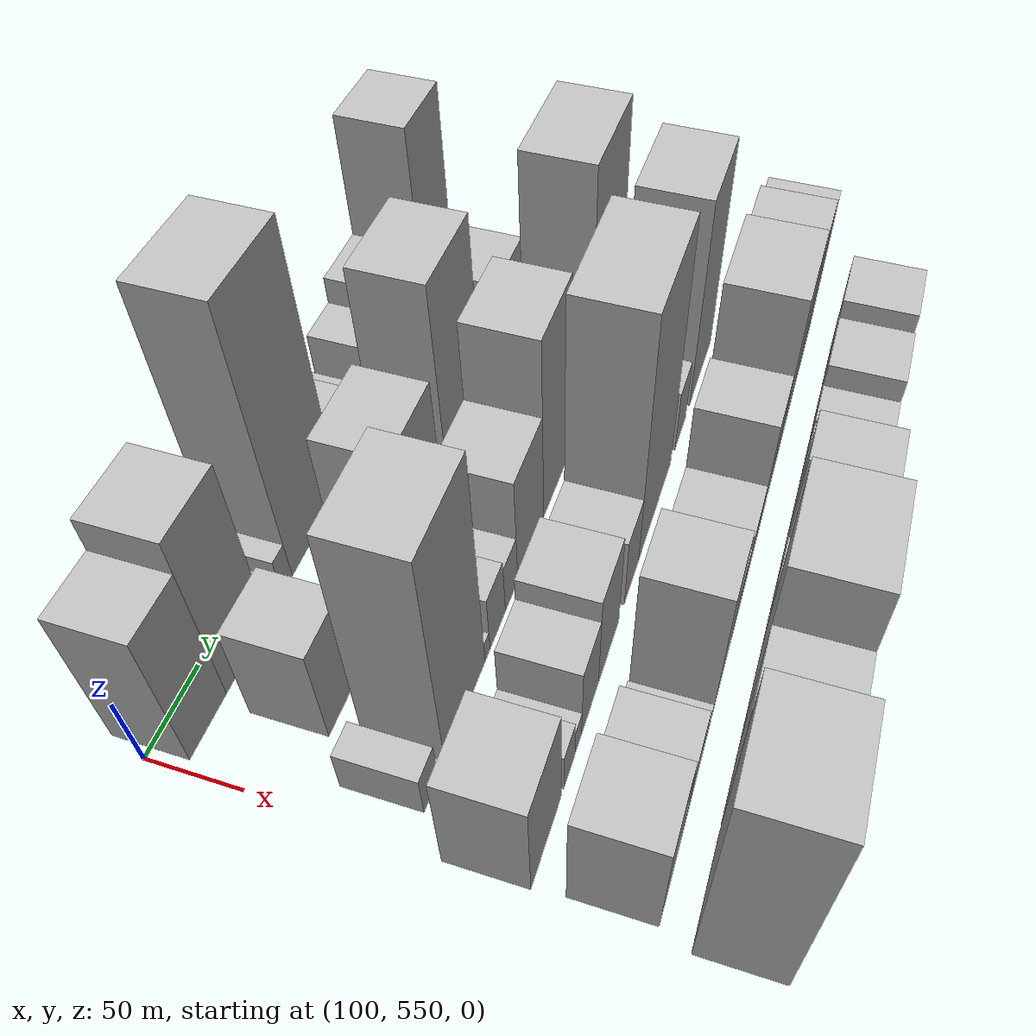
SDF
<sdf version="1.6">
 <world name="default">
  <model name="building_44">
   <static>1</static>
   <pose>100.0000 572.9980 0 0.000000 0.000000 0.000000</pose>
   <link name="link">
    <pose>0 0 49.50 0 0 0</pose>
    <collision name="collision"><geometry><box><size>40.0000 34.7826 99.0000</size></box></geometry></collision>
    <visual name="visual">
     <cast_shadows>0</cast_shadows>
     <geometry><box><size>40.0000 34.7826 99.0000</size></box></geometry>
     <material>
      <script>
       <uri>model://HANNAS_wall/materials/scripts</uri>
       <uri>model://HANNAS_wall/materials/textures</uri>
       <name>vrc/HANNAS_wall</name>
      </script>
     </material>
    </visual>
   </link>
  </model>
  <model name="building_45">
   <static>1</static>
   <pose>100.0000 611.5817 0 0.000000 0.000000 0.000000</pose>
   <link name="link">
    <pose>0 0 60.00 0 0 0</pose>
    <collision name="collision"><geometry><box><size>40.0000 42.3847 120.0000</size></box></geometry></collision>
    <visual name="visual">
     <cast_shadows>0</cast_shadows>
     <geometry><box><size>40.0000 42.3847 120.0000</size></box></geometry>
     <material>
      <script>
       <uri>model://HANNAS_wall/materials/scripts</uri>
       <uri>model://HANNAS_wall/materials/textures</uri>
       <name>vrc/HANNAS_wall</name>
      </script>
     </material>
    </visual>
   </link>
  </model>
  <model name="building_46">
   <static>1</static>
   <pose>100.0000 638.1814 0 0.000000 0.000000 0.000000</pose>
   <link name="link">
    <pose>0 0 12.00 0 0 0</pose>
    <collision name="collision"><geometry><box><size>40.0000 10.8147 24.0000</size></box></geometry></collision>
    <visual name="visual">
     <cast_shadows>0</cast_shadows>
     <geometry><box><size>40.0000 10.8147 24.0000</size></box></geometry>
     <material>
      <script>
       <uri>model://HANNAS_wall/materials/scripts</uri>
       <uri>model://HANNAS_wall/materials/textures</uri>
       <name>vrc/HANNAS_wall</name>
      </script>
     </material>
    </visual>
   </link>
  </model>
  <model name="building_47">
   <static>1</static>
   <pose>100.0000 654.4416 0 0.000000 0.000000 0.000000</pose>
   <link name="link">
    <pose>0 0 13.50 0 0 0</pose>
    <collision name="collision"><geometry><box><size>40.0000 11.7057 27.0000</size></box></geometry></collision>
    <visual name="visual">
     <cast_shadows>0</cast_shadows>
     <geometry><box><size>40.0000 11.7057 27.0000</size></box></geometry>
     <material>
      <script>
       <uri>model://HANNAS_wall/materials/scripts</uri>
       <uri>model://HANNAS_wall/materials/textures</uri>
       <name>vrc/HANNAS_wall</name>
      </script>
     </material>
    </visual>
   </link>
  </model>
  <model name="building_48">
   <static>1</static>
   <pose>100.0000 688.8417 0 0.000000 0.000000 0.000000</pose>
   <link name="link">
    <pose>0 0 93.00 0 0 0</pose>
    <collision name="collision"><geometry><box><size>40.0000 57.0945 186.0000</size></box></geometry></collision>
    <visual name="visual">
     <cast_shadows>0</cast_shadows>
     <geometry><box><size>40.0000 57.0945 186.0000</size></box></geometry>
     <material>
      <script>
       <uri>model://HANNAS_wall/materials/scripts</uri>
       <uri>model://HANNAS_wall/materials/textures</uri>
       <name>vrc/HANNAS_wall</name>
      </script>
     </material>
    </visual>
   </link>
  </model>
  <model name="building_49">
   <static>1</static>
   <pose>100.0000 737.1750 0 0.000000 0.000000 0.000000</pose>
   <link name="link">
    <pose>0 0 24.00 0 0 0</pose>
    <collision name="collision"><geometry><box><size>40.0000 25.5722 48.0000</size></box></geometry></collision>
    <visual name="visual">
     <cast_shadows>0</cast_shadows>
     <geometry><box><size>40.0000 25.5722 48.0000</size></box></geometry>
     <material>
      <script>
       <uri>model://HANNAS_wall/materials/scripts</uri>
       <uri>model://HANNAS_wall/materials/textures</uri>
       <name>vrc/HANNAS_wall</name>
      </script>
     </material>
    </visual>
   </link>
  </model>
  <model name="building_50">
   <static>1</static>
   <pose>100.0000 761.8153 0 0.000000 0.000000 0.000000</pose>
   <link name="link">
    <pose>0 0 15.00 0 0 0</pose>
    <collision name="collision"><geometry><box><size>40.0000 15.7083 30.0000</size></box></geometry></collision>
    <visual name="visual">
     <cast_shadows>0</cast_shadows>
     <geometry><box><size>40.0000 15.7083 30.0000</size></box></geometry>
     <material>
      <script>
       <uri>model://HANNAS_wall/materials/scripts</uri>
       <uri>model://HANNAS_wall/materials/textures</uri>
       <name>vrc/HANNAS_wall</name>
      </script>
     </material>
    </visual>
   </link>
  </model>
  <model name="building_51">
   <static>1</static>
   <pose>100.0000 772.6809 0 0.000000 0.000000 0.000000</pose>
   <link name="link">
    <pose>0 0 7.50 0 0 0</pose>
    <collision name="collision"><geometry><box><size>40.0000 6.0230 15.0000</size></box></geometry></collision>
    <visual name="visual">
     <cast_shadows>0</cast_shadows>
     <geometry><box><size>40.0000 6.0230 15.0000</size></box></geometry>
     <material>
      <script>
       <uri>model://HANNAS_wall/materials/scripts</uri>
       <uri>model://HANNAS_wall/materials/textures</uri>
       <name>vrc/HANNAS_wall</name>
      </script>
     </material>
    </visual>
   </link>
  </model>
  <model name="building_52">
   <static>1</static>
   <pose>100.0000 792.7861 0 0.000000 0.000000 0.000000</pose>
   <link name="link">
    <pose>0 0 24.00 0 0 0</pose>
    <collision name="collision"><geometry><box><size>40.0000 28.1875 48.0000</size></box></geometry></collision>
    <visual name="visual">
     <cast_shadows>0</cast_shadows>
     <geometry><box><size>40.0000 28.1875 48.0000</size></box></geometry>
     <material>
      <script>
       <uri>model://HANNAS_wall/materials/scripts</uri>
       <uri>model://HANNAS_wall/materials/textures</uri>
       <name>vrc/HANNAS_wall</name>
      </script>
     </material>
    </visual>
   </link>
  </model>
  <model name="building_53">
   <static>1</static>
   <pose>100.0000 826.5708 0 0.000000 0.000000 0.000000</pose>
   <link name="link">
    <pose>0 0 33.00 0 0 0</pose>
    <collision name="collision"><geometry><box><size>40.0000 39.3819 66.0000</size></box></geometry></collision>
    <visual name="visual">
     <cast_shadows>0</cast_shadows>
     <geometry><box><size>40.0000 39.3819 66.0000</size></box></geometry>
     <material>
      <script>
       <uri>model://HANNAS_wall/materials/scripts</uri>
       <uri>model://HANNAS_wall/materials/textures</uri>
       <name>vrc/HANNAS_wall</name>
      </script>
     </material>
    </visual>
   </link>
  </model>
  <model name="building_54">
   <static>1</static>
   <pose>100.0000 869.0312 0 0.000000 0.000000 0.000000</pose>
   <link name="link">
    <pose>0 0 72.00 0 0 0</pose>
    <collision name="collision"><geometry><box><size>40.0000 45.5390 144.0000</size></box></geometry></collision>
    <visual name="visual">
     <cast_shadows>0</cast_shadows>
     <geometry><box><size>40.0000 45.5390 144.0000</size></box></geometry>
     <material>
      <script>
       <uri>model://HANNAS_wall/materials/scripts</uri>
       <uri>model://HANNAS_wall/materials/textures</uri>
       <name>vrc/HANNAS_wall</name>
      </script>
     </material>
    </visual>
   </link>
  </model>
  <model name="building_95">
   <static>1</static>
   <pose>155.0000 602.8446 0 0.000000 0.000000 0.000000</pose>
   <link name="link">
    <pose>0 0 34.50 0 0 0</pose>
    <collision name="collision"><geometry><box><size>40.0000 35.7447 69.0000</size></box></geometry></collision>
    <visual name="visual">
     <cast_shadows>0</cast_shadows>
     <geometry><box><size>40.0000 35.7447 69.0000</size></box></geometry>
     <material>
      <script>
       <uri>model://HANNAS_wall/materials/scripts</uri>
       <uri>model://HANNAS_wall/materials/textures</uri>
       <name>vrc/HANNAS_wall</name>
      </script>
     </material>
    </visual>
   </link>
  </model>
  <model name="building_96">
   <static>1</static>
   <pose>155.0000 666.5414 0 0.000000 0.000000 0.000000</pose>
   <link name="link">
    <pose>0 0 7.50 0 0 0</pose>
    <collision name="collision"><geometry><box><size>40.0000 7.2163 15.0000</size></box></geometry></collision>
    <visual name="visual">
     <cast_shadows>0</cast_shadows>
     <geometry><box><size>40.0000 7.2163 15.0000</size></box></geometry>
     <material>
      <script>
       <uri>model://HANNAS_wall/materials/scripts</uri>
       <uri>model://HANNAS_wall/materials/textures</uri>
       <name>vrc/HANNAS_wall</name>
      </script>
     </material>
    </visual>
   </link>
  </model>
  <model name="building_97">
   <static>1</static>
   <pose>155.0000 704.4203 0 0.000000 0.000000 0.000000</pose>
   <link name="link">
    <pose>0 0 45.00 0 0 0</pose>
    <collision name="collision"><geometry><box><size>40.0000 50.5415 90.0000</size></box></geometry></collision>
    <visual name="visual">
     <cast_shadows>0</cast_shadows>
     <geometry><box><size>40.0000 50.5415 90.0000</size></box></geometry>
     <material>
      <script>
       <uri>model://HANNAS_wall/materials/scripts</uri>
       <uri>model://HANNAS_wall/materials/textures</uri>
       <name>vrc/HANNAS_wall</name>
      </script>
     </material>
    </visual>
   </link>
  </model>
  <model name="building_98">
   <static>1</static>
   <pose>155.0000 764.6695 0 0.000000 0.000000 0.000000</pose>
   <link name="link">
    <pose>0 0 72.00 0 0 0</pose>
    <collision name="collision"><geometry><box><size>40.0000 53.9569 144.0000</size></box></geometry></collision>
    <visual name="visual">
     <cast_shadows>0</cast_shadows>
     <geometry><box><size>40.0000 53.9569 144.0000</size></box></geometry>
     <material>
      <script>
       <uri>model://HANNAS_wall/materials/scripts</uri>
       <uri>model://HANNAS_wall/materials/textures</uri>
       <name>vrc/HANNAS_wall</name>
      </script>
     </material>
    </visual>
   </link>
  </model>
  <model name="building_99">
   <static>1</static>
   <pose>155.0000 799.6463 0 0.000000 0.000000 0.000000</pose>
   <link name="link">
    <pose>0 0 15.00 0 0 0</pose>
    <collision name="collision"><geometry><box><size>40.0000 15.9967 30.0000</size></box></geometry></collision>
    <visual name="visual">
     <cast_shadows>0</cast_shadows>
     <geometry><box><size>40.0000 15.9967 30.0000</size></box></geometry>
     <material>
      <script>
       <uri>model://HANNAS_wall/materials/scripts</uri>
       <uri>model://HANNAS_wall/materials/textures</uri>
       <name>vrc/HANNAS_wall</name>
      </script>
     </material>
    </visual>
   </link>
  </model>
  <model name="building_100">
   <static>1</static>
   <pose>155.0000 812.3018 0 0.000000 0.000000 0.000000</pose>
   <link name="link">
    <pose>0 0 10.50 0 0 0</pose>
    <collision name="collision"><geometry><box><size>40.0000 9.3143 21.0000</size></box></geometry></collision>
    <visual name="visual">
     <cast_shadows>0</cast_shadows>
     <geometry><box><size>40.0000 9.3143 21.0000</size></box></geometry>
     <material>
      <script>
       <uri>model://HANNAS_wall/materials/scripts</uri>
       <uri>model://HANNAS_wall/materials/textures</uri>
       <name>vrc/HANNAS_wall</name>
      </script>
     </material>
    </visual>
   </link>
  </model>
  <model name="building_101">
   <static>1</static>
   <pose>155.0000 820.0892 0 0.000000 0.000000 0.000000</pose>
   <link name="link">
    <pose>0 0 7.50 0 0 0</pose>
    <collision name="collision"><geometry><box><size>40.0000 6.2605 15.0000</size></box></geometry></collision>
    <visual name="visual">
     <cast_shadows>0</cast_shadows>
     <geometry><box><size>40.0000 6.2605 15.0000</size></box></geometry>
     <material>
      <script>
       <uri>model://HANNAS_wall/materials/scripts</uri>
       <uri>model://HANNAS_wall/materials/textures</uri>
       <name>vrc/HANNAS_wall</name>
      </script>
     </material>
    </visual>
   </link>
  </model>
  <model name="building_102">
   <static>1</static>
   <pose>155.0000 844.6167 0 0.000000 0.000000 0.000000</pose>
   <link name="link">
    <pose>0 0 36.00 0 0 0</pose>
    <collision name="collision"><geometry><box><size>40.0000 42.7946 72.0000</size></box></geometry></collision>
    <visual name="visual">
     <cast_shadows>0</cast_shadows>
     <geometry><box><size>40.0000 42.7946 72.0000</size></box></geometry>
     <material>
      <script>
       <uri>model://HANNAS_wall/materials/scripts</uri>
       <uri>model://HANNAS_wall/materials/textures</uri>
       <name>vrc/HANNAS_wall</name>
      </script>
     </material>
    </visual>
   </link>
  </model>
  <model name="building_103">
   <static>1</static>
   <pose>155.0000 884.6997 0 0.000000 0.000000 0.000000</pose>
   <link name="link">
    <pose>0 0 21.00 0 0 0</pose>
    <collision name="collision"><geometry><box><size>40.0000 23.3714 42.0000</size></box></geometry></collision>
    <visual name="visual">
     <cast_shadows>0</cast_shadows>
     <geometry><box><size>40.0000 23.3714 42.0000</size></box></geometry>
     <material>
      <script>
       <uri>model://HANNAS_wall/materials/scripts</uri>
       <uri>model://HANNAS_wall/materials/textures</uri>
       <name>vrc/HANNAS_wall</name>
      </script>
     </material>
    </visual>
   </link>
  </model>
  <model name="building_147">
   <static>1</static>
   <pose>210.0000 573.0144 0 0.000000 0.000000 0.000000</pose>
   <link name="link">
    <pose>0 0 15.00 0 0 0</pose>
    <collision name="collision"><geometry><box><size>40.0000 16.9691 30.0000</size></box></geometry></collision>
    <visual name="visual">
     <cast_shadows>0</cast_shadows>
     <geometry><box><size>40.0000 16.9691 30.0000</size></box></geometry>
     <material>
      <script>
       <uri>model://HANNAS_wall/materials/scripts</uri>
       <uri>model://HANNAS_wall/materials/textures</uri>
       <name>vrc/HANNAS_wall</name>
      </script>
     </material>
    </visual>
   </link>
  </model>
  <model name="building_148">
   <static>1</static>
   <pose>210.0000 616.3292 0 0.000000 0.000000 0.000000</pose>
   <link name="link">
    <pose>0 0 78.00 0 0 0</pose>
    <collision name="collision"><geometry><box><size>40.0000 53.6606 156.0000</size></box></geometry></collision>
    <visual name="visual">
     <cast_shadows>0</cast_shadows>
     <geometry><box><size>40.0000 53.6606 156.0000</size></box></geometry>
     <material>
      <script>
       <uri>model://HANNAS_wall/materials/scripts</uri>
       <uri>model://HANNAS_wall/materials/textures</uri>
       <name>vrc/HANNAS_wall</name>
      </script>
     </material>
    </visual>
   </link>
  </model>
  <model name="building_149">
   <static>1</static>
   <pose>210.0000 646.6499 0 0.000000 0.000000 0.000000</pose>
   <link name="link">
    <pose>0 0 7.50 0 0 0</pose>
    <collision name="collision"><geometry><box><size>40.0000 6.9808 15.0000</size></box></geometry></collision>
    <visual name="visual">
     <cast_shadows>0</cast_shadows>
     <geometry><box><size>40.0000 6.9808 15.0000</size></box></geometry>
     <material>
      <script>
       <uri>model://HANNAS_wall/materials/scripts</uri>
       <uri>model://HANNAS_wall/materials/textures</uri>
       <name>vrc/HANNAS_wall</name>
      </script>
     </material>
    </visual>
   </link>
  </model>
  <model name="building_150">
   <static>1</static>
   <pose>210.0000 661.4268 0 0.000000 0.000000 0.000000</pose>
   <link name="link">
    <pose>0 0 21.00 0 0 0</pose>
    <collision name="collision"><geometry><box><size>40.0000 22.5731 42.0000</size></box></geometry></collision>
    <visual name="visual">
     <cast_shadows>0</cast_shadows>
     <geometry><box><size>40.0000 22.5731 42.0000</size></box></geometry>
     <material>
      <script>
       <uri>model://HANNAS_wall/materials/scripts</uri>
       <uri>model://HANNAS_wall/materials/textures</uri>
       <name>vrc/HANNAS_wall</name>
      </script>
     </material>
    </visual>
   </link>
  </model>
  <model name="building_151">
   <static>1</static>
   <pose>210.0000 682.2762 0 0.000000 0.000000 0.000000</pose>
   <link name="link">
    <pose>0 0 18.00 0 0 0</pose>
    <collision name="collision"><geometry><box><size>40.0000 19.1256 36.0000</size></box></geometry></collision>
    <visual name="visual">
     <cast_shadows>0</cast_shadows>
     <geometry><box><size>40.0000 19.1256 36.0000</size></box></geometry>
     <material>
      <script>
       <uri>model://HANNAS_wall/materials/scripts</uri>
       <uri>model://HANNAS_wall/materials/textures</uri>
       <name>vrc/HANNAS_wall</name>
      </script>
     </material>
    </visual>
   </link>
  </model>
  <model name="building_152">
   <static>1</static>
   <pose>210.0000 713.0487 0 0.000000 0.000000 0.000000</pose>
   <link name="link">
    <pose>0 0 39.00 0 0 0</pose>
    <collision name="collision"><geometry><box><size>40.0000 42.4194 78.0000</size></box></geometry></collision>
    <visual name="visual">
     <cast_shadows>0</cast_shadows>
     <geometry><box><size>40.0000 42.4194 78.0000</size></box></geometry>
     <material>
      <script>
       <uri>model://HANNAS_wall/materials/scripts</uri>
       <uri>model://HANNAS_wall/materials/textures</uri>
       <name>vrc/HANNAS_wall</name>
      </script>
     </material>
    </visual>
   </link>
  </model>
  <model name="building_153">
   <static>1</static>
   <pose>210.0000 758.1493 0 0.000000 0.000000 0.000000</pose>
   <link name="link">
    <pose>0 0 64.50 0 0 0</pose>
    <collision name="collision"><geometry><box><size>40.0000 47.7817 129.0000</size></box></geometry></collision>
    <visual name="visual">
     <cast_shadows>0</cast_shadows>
     <geometry><box><size>40.0000 47.7817 129.0000</size></box></geometry>
     <material>
      <script>
       <uri>model://HANNAS_wall/materials/scripts</uri>
       <uri>model://HANNAS_wall/materials/textures</uri>
       <name>vrc/HANNAS_wall</name>
      </script>
     </material>
    </visual>
   </link>
  </model>
  <model name="building_154">
   <static>1</static>
   <pose>210.0000 797.8717 0 0.000000 0.000000 0.000000</pose>
   <link name="link">
    <pose>0 0 28.50 0 0 0</pose>
    <collision name="collision"><geometry><box><size>40.0000 31.6632 57.0000</size></box></geometry></collision>
    <visual name="visual">
     <cast_shadows>0</cast_shadows>
     <geometry><box><size>40.0000 31.6632 57.0000</size></box></geometry>
     <material>
      <script>
       <uri>model://HANNAS_wall/materials/scripts</uri>
       <uri>model://HANNAS_wall/materials/textures</uri>
       <name>vrc/HANNAS_wall</name>
      </script>
     </material>
    </visual>
   </link>
  </model>
  <model name="building_155">
   <static>1</static>
   <pose>210.0000 852.9239 0 0.000000 0.000000 0.000000</pose>
   <link name="link">
    <pose>0 0 81.00 0 0 0</pose>
    <collision name="collision"><geometry><box><size>40.0000 62.4410 162.0000</size></box></geometry></collision>
    <visual name="visual">
     <cast_shadows>0</cast_shadows>
     <geometry><box><size>40.0000 62.4410 162.0000</size></box></geometry>
     <material>
      <script>
       <uri>model://HANNAS_wall/materials/scripts</uri>
       <uri>model://HANNAS_wall/materials/textures</uri>
       <name>vrc/HANNAS_wall</name>
      </script>
     </material>
    </visual>
   </link>
  </model>
  <model name="building_156">
   <static>1</static>
   <pose>210.0000 899.6269 0 0.000000 0.000000 0.000000</pose>
   <link name="link">
    <pose>0 0 12.00 0 0 0</pose>
    <collision name="collision"><geometry><box><size>40.0000 10.9651 24.0000</size></box></geometry></collision>
    <visual name="visual">
     <cast_shadows>0</cast_shadows>
     <geometry><box><size>40.0000 10.9651 24.0000</size></box></geometry>
     <material>
      <script>
       <uri>model://HANNAS_wall/materials/scripts</uri>
       <uri>model://HANNAS_wall/materials/textures</uri>
       <name>vrc/HANNAS_wall</name>
      </script>
     </material>
    </visual>
   </link>
  </model>
  <model name="building_196">
   <static>1</static>
   <pose>265.0000 567.9843 0 0.000000 0.000000 0.000000</pose>
   <link name="link">
    <pose>0 0 37.50 0 0 0</pose>
    <collision name="collision"><geometry><box><size>40.0000 42.3704 75.0000</size></box></geometry></collision>
    <visual name="visual">
     <cast_shadows>0</cast_shadows>
     <geometry><box><size>40.0000 42.3704 75.0000</size></box></geometry>
     <material>
      <script>
       <uri>model://HANNAS_wall/materials/scripts</uri>
       <uri>model://HANNAS_wall/materials/textures</uri>
       <name>vrc/HANNAS_wall</name>
      </script>
     </material>
    </visual>
   </link>
  </model>
  <model name="building_197">
   <static>1</static>
   <pose>265.0000 601.6630 0 0.000000 0.000000 0.000000</pose>
   <link name="link">
    <pose>0 0 15.00 0 0 0</pose>
    <collision name="collision"><geometry><box><size>40.0000 16.9869 30.0000</size></box></geometry></collision>
    <visual name="visual">
     <cast_shadows>0</cast_shadows>
     <geometry><box><size>40.0000 16.9869 30.0000</size></box></geometry>
     <material>
      <script>
       <uri>model://HANNAS_wall/materials/scripts</uri>
       <uri>model://HANNAS_wall/materials/textures</uri>
       <name>vrc/HANNAS_wall</name>
      </script>
     </material>
    </visual>
   </link>
  </model>
  <model name="building_198">
   <static>1</static>
   <pose>265.0000 615.3219 0 0.000000 0.000000 0.000000</pose>
   <link name="link">
    <pose>0 0 10.50 0 0 0</pose>
    <collision name="collision"><geometry><box><size>40.0000 10.3310 21.0000</size></box></geometry></collision>
    <visual name="visual">
     <cast_shadows>0</cast_shadows>
     <geometry><box><size>40.0000 10.3310 21.0000</size></box></geometry>
     <material>
      <script>
       <uri>model://HANNAS_wall/materials/scripts</uri>
       <uri>model://HANNAS_wall/materials/textures</uri>
       <name>vrc/HANNAS_wall</name>
      </script>
     </material>
    </visual>
   </link>
  </model>
  <model name="building_199">
   <static>1</static>
   <pose>265.0000 634.3694 0 0.000000 0.000000 0.000000</pose>
   <link name="link">
    <pose>0 0 27.00 0 0 0</pose>
    <collision name="collision"><geometry><box><size>40.0000 27.7641 54.0000</size></box></geometry></collision>
    <visual name="visual">
     <cast_shadows>0</cast_shadows>
     <geometry><box><size>40.0000 27.7641 54.0000</size></box></geometry>
     <material>
      <script>
       <uri>model://HANNAS_wall/materials/scripts</uri>
       <uri>model://HANNAS_wall/materials/textures</uri>
       <name>vrc/HANNAS_wall</name>
      </script>
     </material>
    </visual>
   </link>
  </model>
  <model name="building_200">
   <static>1</static>
   <pose>265.0000 666.2497 0 0.000000 0.000000 0.000000</pose>
   <link name="link">
    <pose>0 0 34.50 0 0 0</pose>
    <collision name="collision"><geometry><box><size>40.0000 35.9964 69.0000</size></box></geometry></collision>
    <visual name="visual">
     <cast_shadows>0</cast_shadows>
     <geometry><box><size>40.0000 35.9964 69.0000</size></box></geometry>
     <material>
      <script>
       <uri>model://HANNAS_wall/materials/scripts</uri>
       <uri>model://HANNAS_wall/materials/textures</uri>
       <name>vrc/HANNAS_wall</name>
      </script>
     </material>
    </visual>
   </link>
  </model>
  <model name="building_201">
   <static>1</static>
   <pose>265.0000 708.0864 0 0.000000 0.000000 0.000000</pose>
   <link name="link">
    <pose>0 0 25.50 0 0 0</pose>
    <collision name="collision"><geometry><box><size>40.0000 27.6770 51.0000</size></box></geometry></collision>
    <visual name="visual">
     <cast_shadows>0</cast_shadows>
     <geometry><box><size>40.0000 27.6770 51.0000</size></box></geometry>
     <material>
      <script>
       <uri>model://HANNAS_wall/materials/scripts</uri>
       <uri>model://HANNAS_wall/materials/textures</uri>
       <name>vrc/HANNAS_wall</name>
      </script>
     </material>
    </visual>
   </link>
  </model>
  <model name="building_202">
   <static>1</static>
   <pose>265.0000 756.1161 0 0.000000 0.000000 0.000000</pose>
   <link name="link">
    <pose>0 0 85.50 0 0 0</pose>
    <collision name="collision"><geometry><box><size>40.0000 68.3826 171.0000</size></box></geometry></collision>
    <visual name="visual">
     <cast_shadows>0</cast_shadows>
     <geometry><box><size>40.0000 68.3826 171.0000</size></box></geometry>
     <material>
      <script>
       <uri>model://HANNAS_wall/materials/scripts</uri>
       <uri>model://HANNAS_wall/materials/textures</uri>
       <name>vrc/HANNAS_wall</name>
      </script>
     </material>
    </visual>
   </link>
  </model>
  <model name="building_203">
   <static>1</static>
   <pose>265.0000 812.9513 0 0.000000 0.000000 0.000000</pose>
   <link name="link">
    <pose>0 0 22.50 0 0 0</pose>
    <collision name="collision"><geometry><box><size>40.0000 25.2877 45.0000</size></box></geometry></collision>
    <visual name="visual">
     <cast_shadows>0</cast_shadows>
     <geometry><box><size>40.0000 25.2877 45.0000</size></box></geometry>
     <material>
      <script>
       <uri>model://HANNAS_wall/materials/scripts</uri>
       <uri>model://HANNAS_wall/materials/textures</uri>
       <name>vrc/HANNAS_wall</name>
      </script>
     </material>
    </visual>
   </link>
  </model>
  <model name="building_204">
   <static>1</static>
   <pose>265.0000 863.2365 0 0.000000 0.000000 0.000000</pose>
   <link name="link">
    <pose>0 0 72.00 0 0 0</pose>
    <collision name="collision"><geometry><box><size>40.0000 55.2828 144.0000</size></box></geometry></collision>
    <visual name="visual">
     <cast_shadows>0</cast_shadows>
     <geometry><box><size>40.0000 55.2828 144.0000</size></box></geometry>
     <material>
      <script>
       <uri>model://HANNAS_wall/materials/scripts</uri>
       <uri>model://HANNAS_wall/materials/textures</uri>
       <name>vrc/HANNAS_wall</name>
      </script>
     </material>
    </visual>
   </link>
  </model>
  <model name="building_246">
   <static>1</static>
   <pose>320.0000 567.6499 0 0.000000 0.000000 0.000000</pose>
   <link name="link">
    <pose>0 0 37.50 0 0 0</pose>
    <collision name="collision"><geometry><box><size>40.0000 38.7316 75.0000</size></box></geometry></collision>
    <visual name="visual">
     <cast_shadows>0</cast_shadows>
     <geometry><box><size>40.0000 38.7316 75.0000</size></box></geometry>
     <material>
      <script>
       <uri>model://HANNAS_wall/materials/scripts</uri>
       <uri>model://HANNAS_wall/materials/textures</uri>
       <name>vrc/HANNAS_wall</name>
      </script>
     </material>
    </visual>
   </link>
  </model>
  <model name="building_247">
   <static>1</static>
   <pose>320.0000 591.3218 0 0.000000 0.000000 0.000000</pose>
   <link name="link">
    <pose>0 0 9.00 0 0 0</pose>
    <collision name="collision"><geometry><box><size>40.0000 8.6121 18.0000</size></box></geometry></collision>
    <visual name="visual">
     <cast_shadows>0</cast_shadows>
     <geometry><box><size>40.0000 8.6121 18.0000</size></box></geometry>
     <material>
      <script>
       <uri>model://HANNAS_wall/materials/scripts</uri>
       <uri>model://HANNAS_wall/materials/textures</uri>
       <name>vrc/HANNAS_wall</name>
      </script>
     </material>
    </visual>
   </link>
  </model>
  <model name="building_248">
   <static>1</static>
   <pose>320.0000 609.8982 0 0.000000 0.000000 0.000000</pose>
   <link name="link">
    <pose>0 0 24.00 0 0 0</pose>
    <collision name="collision"><geometry><box><size>40.0000 28.5406 48.0000</size></box></geometry></collision>
    <visual name="visual">
     <cast_shadows>0</cast_shadows>
     <geometry><box><size>40.0000 28.5406 48.0000</size></box></geometry>
     <material>
      <script>
       <uri>model://HANNAS_wall/materials/scripts</uri>
       <uri>model://HANNAS_wall/materials/textures</uri>
       <name>vrc/HANNAS_wall</name>
      </script>
     </material>
    </visual>
   </link>
  </model>
  <model name="building_249">
   <static>1</static>
   <pose>320.0000 628.0828 0 0.000000 0.000000 0.000000</pose>
   <link name="link">
    <pose>0 0 9.00 0 0 0</pose>
    <collision name="collision"><geometry><box><size>40.0000 7.8287 18.0000</size></box></geometry></collision>
    <visual name="visual">
     <cast_shadows>0</cast_shadows>
     <geometry><box><size>40.0000 7.8287 18.0000</size></box></geometry>
     <material>
      <script>
       <uri>model://HANNAS_wall/materials/scripts</uri>
       <uri>model://HANNAS_wall/materials/textures</uri>
       <name>vrc/HANNAS_wall</name>
      </script>
     </material>
    </visual>
   </link>
  </model>
  <model name="building_250">
   <static>1</static>
   <pose>320.0000 637.1878 0 0.000000 0.000000 0.000000</pose>
   <link name="link">
    <pose>0 0 10.50 0 0 0</pose>
    <collision name="collision"><geometry><box><size>40.0000 10.3812 21.0000</size></box></geometry></collision>
    <visual name="visual">
     <cast_shadows>0</cast_shadows>
     <geometry><box><size>40.0000 10.3812 21.0000</size></box></geometry>
     <material>
      <script>
       <uri>model://HANNAS_wall/materials/scripts</uri>
       <uri>model://HANNAS_wall/materials/textures</uri>
       <name>vrc/HANNAS_wall</name>
      </script>
     </material>
    </visual>
   </link>
  </model>
  <model name="building_251">
   <static>1</static>
   <pose>320.0000 664.5575 0 0.000000 0.000000 0.000000</pose>
   <link name="link">
    <pose>0 0 49.50 0 0 0</pose>
    <collision name="collision"><geometry><box><size>40.0000 36.3581 99.0000</size></box></geometry></collision>
    <visual name="visual">
     <cast_shadows>0</cast_shadows>
     <geometry><box><size>40.0000 36.3581 99.0000</size></box></geometry>
     <material>
      <script>
       <uri>model://HANNAS_wall/materials/scripts</uri>
       <uri>model://HANNAS_wall/materials/textures</uri>
       <name>vrc/HANNAS_wall</name>
      </script>
     </material>
    </visual>
   </link>
  </model>
  <model name="building_252">
   <static>1</static>
   <pose>320.0000 696.9867 0 0.000000 0.000000 0.000000</pose>
   <link name="link">
    <pose>0 0 24.00 0 0 0</pose>
    <collision name="collision"><geometry><box><size>40.0000 28.5004 48.0000</size></box></geometry></collision>
    <visual name="visual">
     <cast_shadows>0</cast_shadows>
     <geometry><box><size>40.0000 28.5004 48.0000</size></box></geometry>
     <material>
      <script>
       <uri>model://HANNAS_wall/materials/scripts</uri>
       <uri>model://HANNAS_wall/materials/textures</uri>
       <name>vrc/HANNAS_wall</name>
      </script>
     </material>
    </visual>
   </link>
  </model>
  <model name="building_253">
   <static>1</static>
   <pose>320.0000 727.1792 0 0.000000 0.000000 0.000000</pose>
   <link name="link">
    <pose>0 0 28.50 0 0 0</pose>
    <collision name="collision"><geometry><box><size>40.0000 31.8846 57.0000</size></box></geometry></collision>
    <visual name="visual">
     <cast_shadows>0</cast_shadows>
     <geometry><box><size>40.0000 31.8846 57.0000</size></box></geometry>
     <material>
      <script>
       <uri>model://HANNAS_wall/materials/scripts</uri>
       <uri>model://HANNAS_wall/materials/textures</uri>
       <name>vrc/HANNAS_wall</name>
      </script>
     </material>
    </visual>
   </link>
  </model>
  <model name="building_254">
   <static>1</static>
   <pose>320.0000 759.9913 0 0.000000 0.000000 0.000000</pose>
   <link name="link">
    <pose>0 0 49.50 0 0 0</pose>
    <collision name="collision"><geometry><box><size>40.0000 33.7395 99.0000</size></box></geometry></collision>
    <visual name="visual">
     <cast_shadows>0</cast_shadows>
     <geometry><box><size>40.0000 33.7395 99.0000</size></box></geometry>
     <material>
      <script>
       <uri>model://HANNAS_wall/materials/scripts</uri>
       <uri>model://HANNAS_wall/materials/textures</uri>
       <name>vrc/HANNAS_wall</name>
      </script>
     </material>
    </visual>
   </link>
  </model>
  <model name="building_255">
   <static>1</static>
   <pose>320.0000 811.9912 0 0.000000 0.000000 0.000000</pose>
   <link name="link">
    <pose>0 0 69.00 0 0 0</pose>
    <collision name="collision"><geometry><box><size>40.0000 52.2604 138.0000</size></box></geometry></collision>
    <visual name="visual">
     <cast_shadows>0</cast_shadows>
     <geometry><box><size>40.0000 52.2604 138.0000</size></box></geometry>
     <material>
      <script>
       <uri>model://HANNAS_wall/materials/scripts</uri>
       <uri>model://HANNAS_wall/materials/textures</uri>
       <name>vrc/HANNAS_wall</name>
      </script>
     </material>
    </visual>
   </link>
  </model>
  <model name="building_256">
   <static>1</static>
   <pose>320.0000 864.1410 0 0.000000 0.000000 0.000000</pose>
   <link name="link">
    <pose>0 0 60.00 0 0 0</pose>
    <collision name="collision"><geometry><box><size>40.0000 46.0394 120.0000</size></box></geometry></collision>
    <visual name="visual">
     <cast_shadows>0</cast_shadows>
     <geometry><box><size>40.0000 46.0394 120.0000</size></box></geometry>
     <material>
      <script>
       <uri>model://HANNAS_wall/materials/scripts</uri>
       <uri>model://HANNAS_wall/materials/textures</uri>
       <name>vrc/HANNAS_wall</name>
      </script>
     </material>
    </visual>
   </link>
  </model>
  <model name="building_257">
   <static>1</static>
   <pose>320.0000 905.9375 0 0.000000 0.000000 0.000000</pose>
   <link name="link">
    <pose>0 0 49.50 0 0 0</pose>
    <collision name="collision"><geometry><box><size>40.0000 37.5536 99.0000</size></box></geometry></collision>
    <visual name="visual">
     <cast_shadows>0</cast_shadows>
     <geometry><box><size>40.0000 37.5536 99.0000</size></box></geometry>
     <material>
      <script>
       <uri>model://HANNAS_wall/materials/scripts</uri>
       <uri>model://HANNAS_wall/materials/textures</uri>
       <name>vrc/HANNAS_wall</name>
      </script>
     </material>
    </visual>
   </link>
  </model>
  <model name="building_297">
   <static>1</static>
   <pose>375.0000 567.4539 0 0.000000 0.000000 0.000000</pose>
   <link name="link">
    <pose>0 0 72.00 0 0 0</pose>
    <collision name="collision"><geometry><box><size>40.0000 51.4293 144.0000</size></box></geometry></collision>
    <visual name="visual">
     <cast_shadows>0</cast_shadows>
     <geometry><box><size>40.0000 51.4293 144.0000</size></box></geometry>
     <material>
      <script>
       <uri>model://HANNAS_wall/materials/scripts</uri>
       <uri>model://HANNAS_wall/materials/textures</uri>
       <name>vrc/HANNAS_wall</name>
      </script>
     </material>
    </visual>
   </link>
  </model>
  <model name="building_298">
   <static>1</static>
   <pose>375.0000 617.1331 0 0.000000 0.000000 0.000000</pose>
   <link name="link">
    <pose>0 0 52.50 0 0 0</pose>
    <collision name="collision"><geometry><box><size>40.0000 37.9293 105.0000</size></box></geometry></collision>
    <visual name="visual">
     <cast_shadows>0</cast_shadows>
     <geometry><box><size>40.0000 37.9293 105.0000</size></box></geometry>
     <material>
      <script>
       <uri>model://HANNAS_wall/materials/scripts</uri>
       <uri>model://HANNAS_wall/materials/textures</uri>
       <name>vrc/HANNAS_wall</name>
      </script>
     </material>
    </visual>
   </link>
  </model>
  <model name="building_299">
   <static>1</static>
   <pose>375.0000 663.2135 0 0.000000 0.000000 0.000000</pose>
   <link name="link">
    <pose>0 0 72.00 0 0 0</pose>
    <collision name="collision"><geometry><box><size>40.0000 54.2315 144.0000</size></box></geometry></collision>
    <visual name="visual">
     <cast_shadows>0</cast_shadows>
     <geometry><box><size>40.0000 54.2315 144.0000</size></box></geometry>
     <material>
      <script>
       <uri>model://HANNAS_wall/materials/scripts</uri>
       <uri>model://HANNAS_wall/materials/textures</uri>
       <name>vrc/HANNAS_wall</name>
      </script>
     </material>
    </visual>
   </link>
  </model>
  <model name="building_300">
   <static>1</static>
   <pose>375.0000 694.7088 0 0.000000 0.000000 0.000000</pose>
   <link name="link">
    <pose>0 0 9.00 0 0 0</pose>
    <collision name="collision"><geometry><box><size>40.0000 8.7590 18.0000</size></box></geometry></collision>
    <visual name="visual">
     <cast_shadows>0</cast_shadows>
     <geometry><box><size>40.0000 8.7590 18.0000</size></box></geometry>
     <material>
      <script>
       <uri>model://HANNAS_wall/materials/scripts</uri>
       <uri>model://HANNAS_wall/materials/textures</uri>
       <name>vrc/HANNAS_wall</name>
      </script>
     </material>
    </visual>
   </link>
  </model>
  <model name="building_301">
   <static>1</static>
   <pose>375.0000 712.3096 0 0.000000 0.000000 0.000000</pose>
   <link name="link">
    <pose>0 0 22.50 0 0 0</pose>
    <collision name="collision"><geometry><box><size>40.0000 26.4427 45.0000</size></box></geometry></collision>
    <visual name="visual">
     <cast_shadows>0</cast_shadows>
     <geometry><box><size>40.0000 26.4427 45.0000</size></box></geometry>
     <material>
      <script>
       <uri>model://HANNAS_wall/materials/scripts</uri>
       <uri>model://HANNAS_wall/materials/textures</uri>
       <name>vrc/HANNAS_wall</name>
      </script>
     </material>
    </visual>
   </link>
  </model>
  <model name="building_302">
   <static>1</static>
   <pose>375.0000 740.9864 0 0.000000 0.000000 0.000000</pose>
   <link name="link">
    <pose>0 0 51.00 0 0 0</pose>
    <collision name="collision"><geometry><box><size>40.0000 30.9107 102.0000</size></box></geometry></collision>
    <visual name="visual">
     <cast_shadows>0</cast_shadows>
     <geometry><box><size>40.0000 30.9107 102.0000</size></box></geometry>
     <material>
      <script>
       <uri>model://HANNAS_wall/materials/scripts</uri>
       <uri>model://HANNAS_wall/materials/textures</uri>
       <name>vrc/HANNAS_wall</name>
      </script>
     </material>
    </visual>
   </link>
  </model>
  <model name="building_303">
   <static>1</static>
   <pose>375.0000 773.3979 0 0.000000 0.000000 0.000000</pose>
   <link name="link">
    <pose>0 0 28.50 0 0 0</pose>
    <collision name="collision"><geometry><box><size>40.0000 33.9123 57.0000</size></box></geometry></collision>
    <visual name="visual">
     <cast_shadows>0</cast_shadows>
     <geometry><box><size>40.0000 33.9123 57.0000</size></box></geometry>
     <material>
      <script>
       <uri>model://HANNAS_wall/materials/scripts</uri>
       <uri>model://HANNAS_wall/materials/textures</uri>
       <name>vrc/HANNAS_wall</name>
      </script>
     </material>
    </visual>
   </link>
  </model>
  <model name="building_304">
   <static>1</static>
   <pose>375.0000 795.5577 0 0.000000 0.000000 0.000000</pose>
   <link name="link">
    <pose>0 0 10.50 0 0 0</pose>
    <collision name="collision"><geometry><box><size>40.0000 10.4074 21.0000</size></box></geometry></collision>
    <visual name="visual">
     <cast_shadows>0</cast_shadows>
     <geometry><box><size>40.0000 10.4074 21.0000</size></box></geometry>
     <material>
      <script>
       <uri>model://HANNAS_wall/materials/scripts</uri>
       <uri>model://HANNAS_wall/materials/textures</uri>
       <name>vrc/HANNAS_wall</name>
      </script>
     </material>
    </visual>
   </link>
  </model>
  <model name="building_305">
   <static>1</static>
   <pose>375.0000 813.6324 0 0.000000 0.000000 0.000000</pose>
   <link name="link">
    <pose>0 0 24.00 0 0 0</pose>
    <collision name="collision"><geometry><box><size>40.0000 25.7419 48.0000</size></box></geometry></collision>
    <visual name="visual">
     <cast_shadows>0</cast_shadows>
     <geometry><box><size>40.0000 25.7419 48.0000</size></box></geometry>
     <material>
      <script>
       <uri>model://HANNAS_wall/materials/scripts</uri>
       <uri>model://HANNAS_wall/materials/textures</uri>
       <name>vrc/HANNAS_wall</name>
      </script>
     </material>
    </visual>
   </link>
  </model>
  <model name="building_306">
   <static>1</static>
   <pose>375.0000 845.2934 0 0.000000 0.000000 0.000000</pose>
   <link name="link">
    <pose>0 0 31.50 0 0 0</pose>
    <collision name="collision"><geometry><box><size>40.0000 37.5801 63.0000</size></box></geometry></collision>
    <visual name="visual">
     <cast_shadows>0</cast_shadows>
     <geometry><box><size>40.0000 37.5801 63.0000</size></box></geometry>
     <material>
      <script>
       <uri>model://HANNAS_wall/materials/scripts</uri>
       <uri>model://HANNAS_wall/materials/textures</uri>
       <name>vrc/HANNAS_wall</name>
      </script>
     </material>
    </visual>
   </link>
  </model>
  <model name="building_307">
   <static>1</static>
   <pose>375.0000 890.3372 0 0.000000 0.000000 0.000000</pose>
   <link name="link">
    <pose>0 0 34.50 0 0 0</pose>
    <collision name="collision"><geometry><box><size>40.0000 38.5074 69.0000</size></box></geometry></collision>
    <visual name="visual">
     <cast_shadows>0</cast_shadows>
     <geometry><box><size>40.0000 38.5074 69.0000</size></box></geometry>
     <material>
      <script>
       <uri>model://HANNAS_wall/materials/scripts</uri>
       <uri>model://HANNAS_wall/materials/textures</uri>
       <name>vrc/HANNAS_wall</name>
      </script>
     </material>
    </visual>
   </link>
  </model>
 </world>
</sdf>
